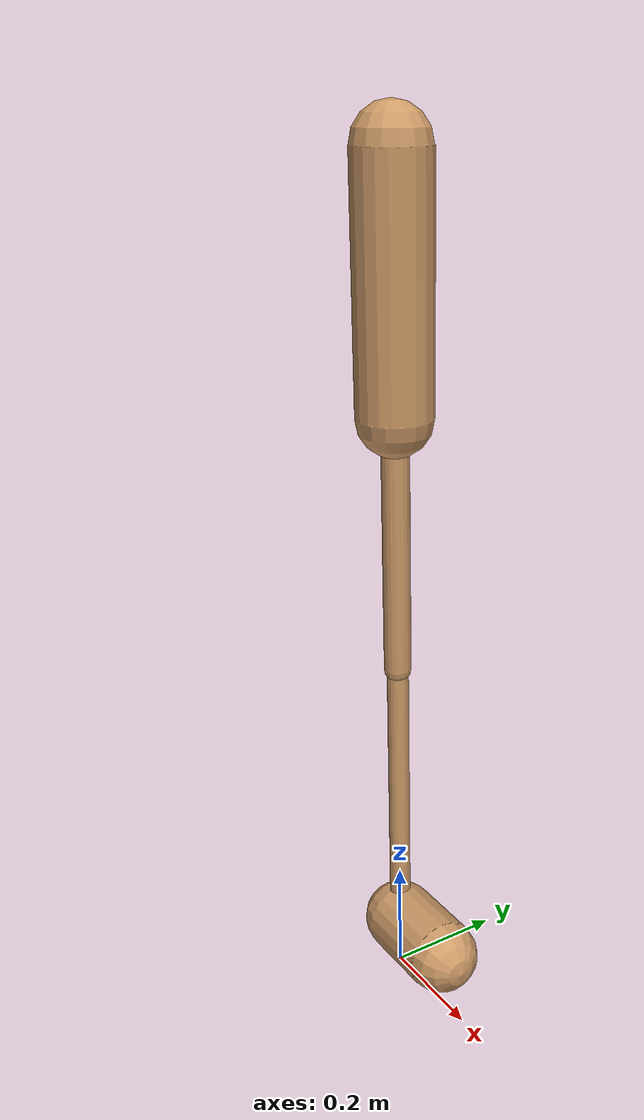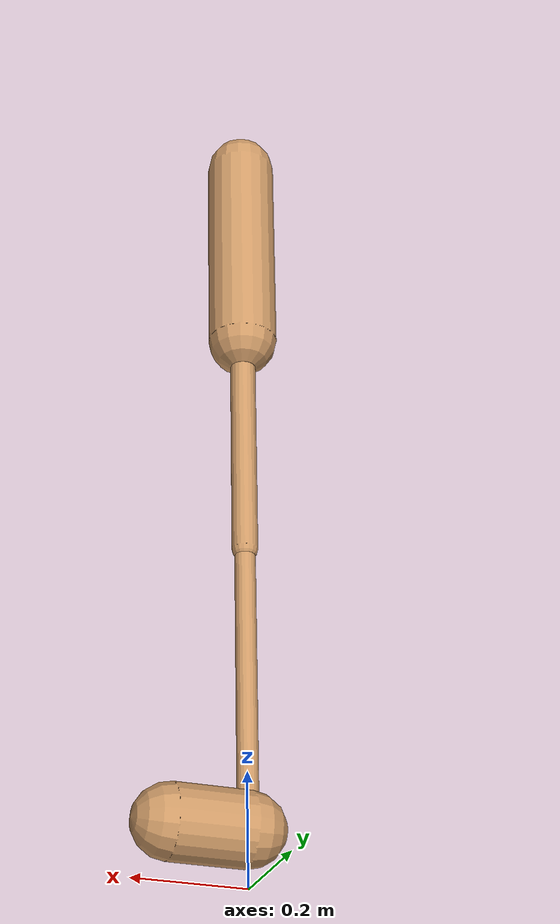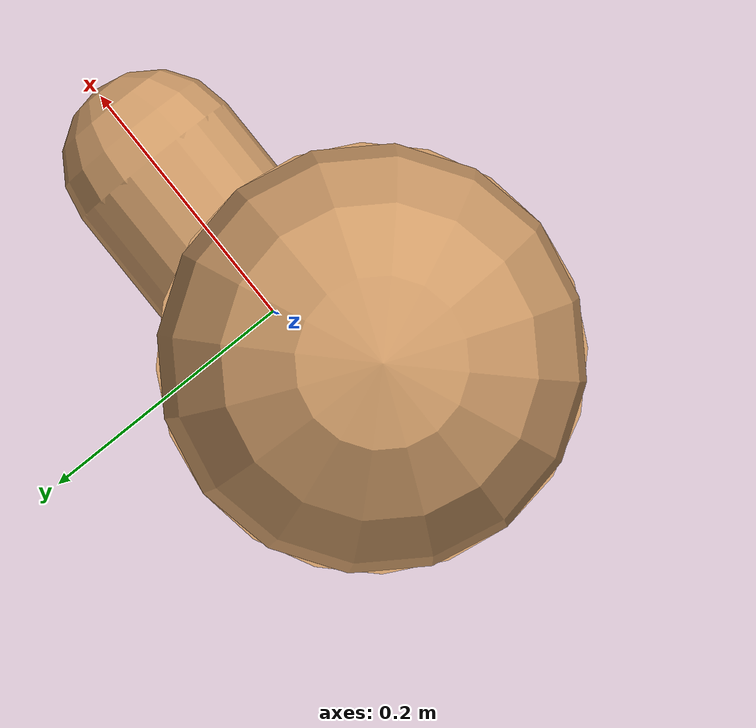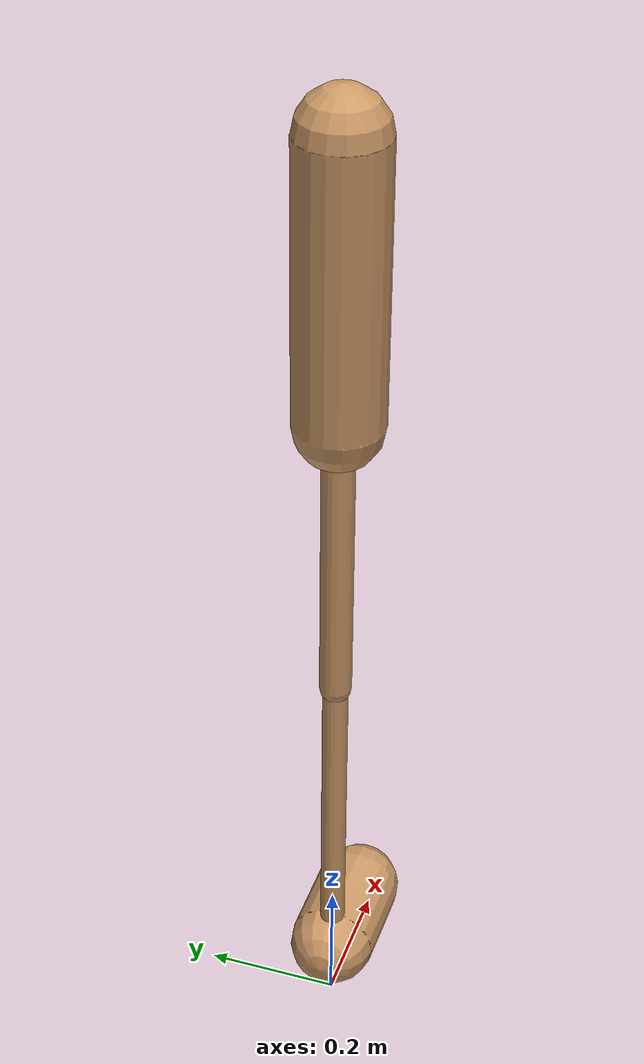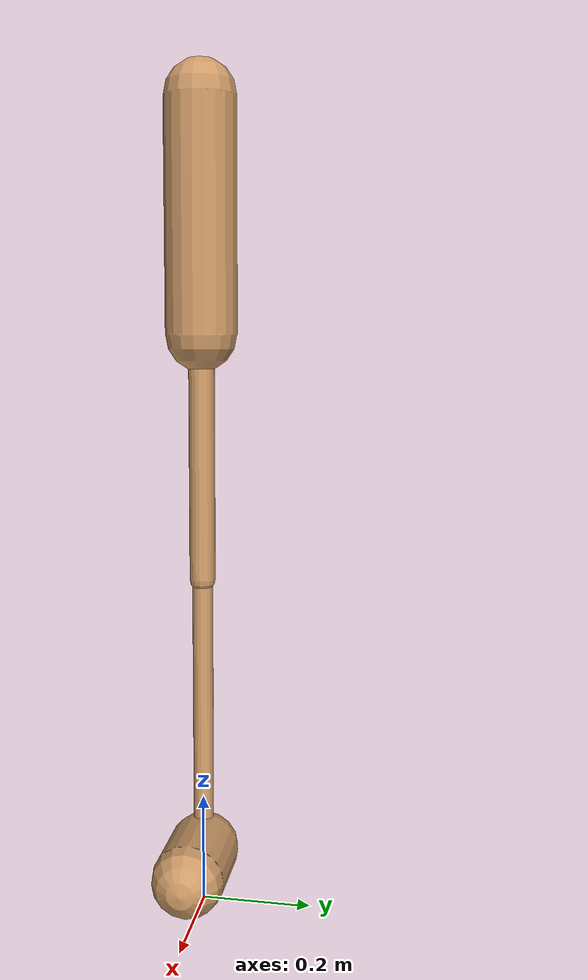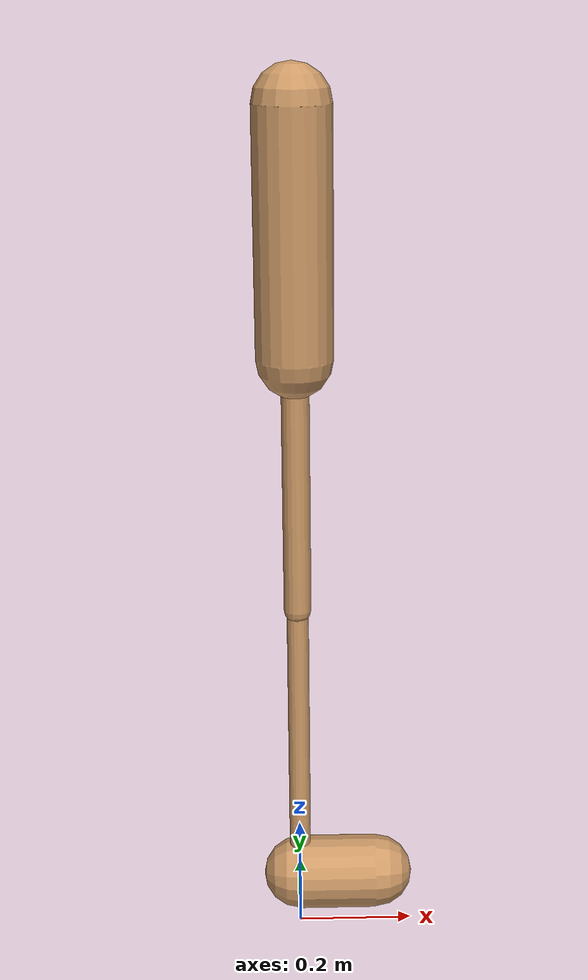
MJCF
<mujoco model="walker2d">
  <compiler angle="degree" coordinate="global" inertiafromgeom="true" />
  <default>
    <joint armature="0.01" damping=".1" limited="true" />
    <geom conaffinity="0" condim="3" contype="1" density="1000" friction="0.8 .1 .1" rgba="0.8 0.6 .4 1" />
  </default>
  <option integrator="RK4" timestep="0.002" />
  <worldbody>

    <body name="torso" pos="0 0 -0.02989707747859308">
      <joint armature="0" axis="1 0 0" damping="0" limited="false" name="ignorex" pos="0 0 0" stiffness="0" type="slide" />
      <joint armature="0" axis="0 0 1" damping="0" limited="false" name="ignorez" pos="0 0 0" ref="1.25" stiffness="0" type="slide" />
      <joint armature="0" axis="0 1 0" damping="0" limited="false" name="ignorey" pos="0 0 0" stiffness="0" type="hinge" />
      <geom fromto="0 0 1.45 0 0 1.05" name="torso_geom" size="0.06322860224249026" type="capsule" />
      <body name="thigh">
        <joint axis="0 -1 0" name="thigh_joint" pos="0 0 1.05" range="-150 0" type="hinge" />
        <geom fromto="0.0 0.0 1.05 0.0 0.0 0.6141617735424915" name="thigh_geom" size="0.02307968729751575" type="capsule" />
        <body name="leg" pos="0.0 0.0 0.014161773542491485">
          <joint axis="0 -1 0" name="leg_joint" pos="0 0 0.6" range="-150 0" type="hinge" />
          <geom fromto="0.0 0.0 0.6 0.0 0.0 0.11573530393610162" name="leg_geom" size="0.018463749838012602" type="capsule" />
          <body name="foot" pos="0.0 0.0 0.01573530393610162">
            <joint axis="0 -1 0" name="foot_joint" pos="0 0 0.1" range="-45 45" type="hinge" />
            <geom fromto="0.0 0.0 0.1 0.135175835991173 0.0 0.1" name="foot_geom" size="0.06454270337708701" type="capsule" />
          </body>
        </body>
      </body>

      <body name="thigh_left">
        <joint axis="0 -1 0" name="thigh_left_joint" pos="0 0 1.05" range="-150 0" type="hinge" />
        <geom fromto="0.0 0.0 1.05 0.0 0.0 0.6141617735424915" name="thigh_left_geom" rgba=".7 .3 .6 1" size="0.02307968729751575" type="capsule" />
        <body name="leg_left" pos="0.0 0.0 0.014161773542491485">
          <joint axis="0 -1 0" name="leg_left_joint" pos="0 0 0.6" range="-150 0" type="hinge" />
          <geom fromto="0.0 0.0 0.6 0.0 0.0 0.11573530393610162" name="leg_left_geom" rgba=".7 .3 .6 1" size="0.018463749838012602" type="capsule" />
          <body name="foot_left" pos="0.0 0.0 0.01573530393610162">
            <joint axis="0 -1 0" name="foot_left_joint" pos="0 0 0.1" range="-45 45" type="hinge" />
            <geom fromto="0.0 0.0 0.1 0.135175835991173 0.0 0.1" name="foot_left_geom" rgba=".7 .3 .6 1" size="0.06454270337708701" type="capsule" />
          </body>
        </body>
      </body>
    </body>
  </worldbody>
  <actuator>

    <motor ctrllimited="true" ctrlrange="-1.0 1.0" gear="100" joint="thigh_joint" />
    <motor ctrllimited="true" ctrlrange="-1.0 1.0" gear="100" joint="leg_joint" />
    <motor ctrllimited="true" ctrlrange="-1.0 1.0" gear="100" joint="foot_joint" />
    <motor ctrllimited="true" ctrlrange="-1.0 1.0" gear="100" joint="thigh_left_joint" />
    <motor ctrllimited="true" ctrlrange="-1.0 1.0" gear="100" joint="leg_left_joint" />
    <motor ctrllimited="true" ctrlrange="-1.0 1.0" gear="100" joint="foot_left_joint" />

  </actuator>
</mujoco>
